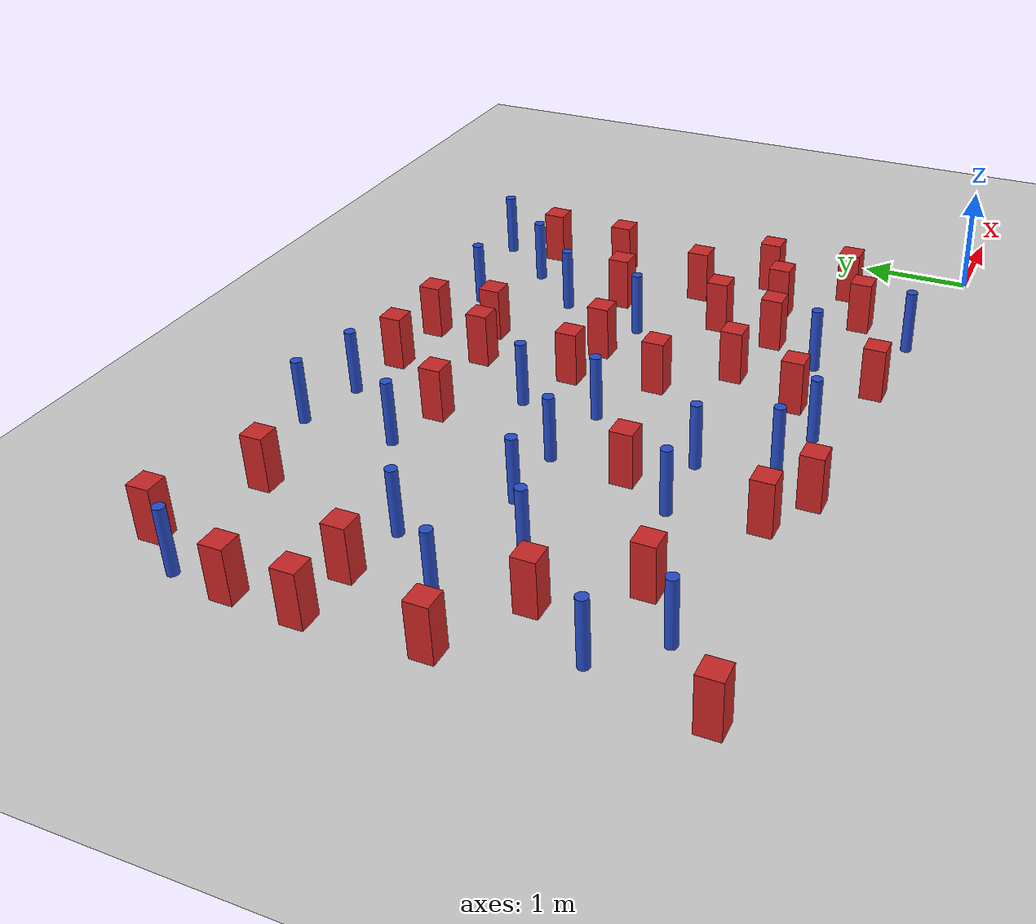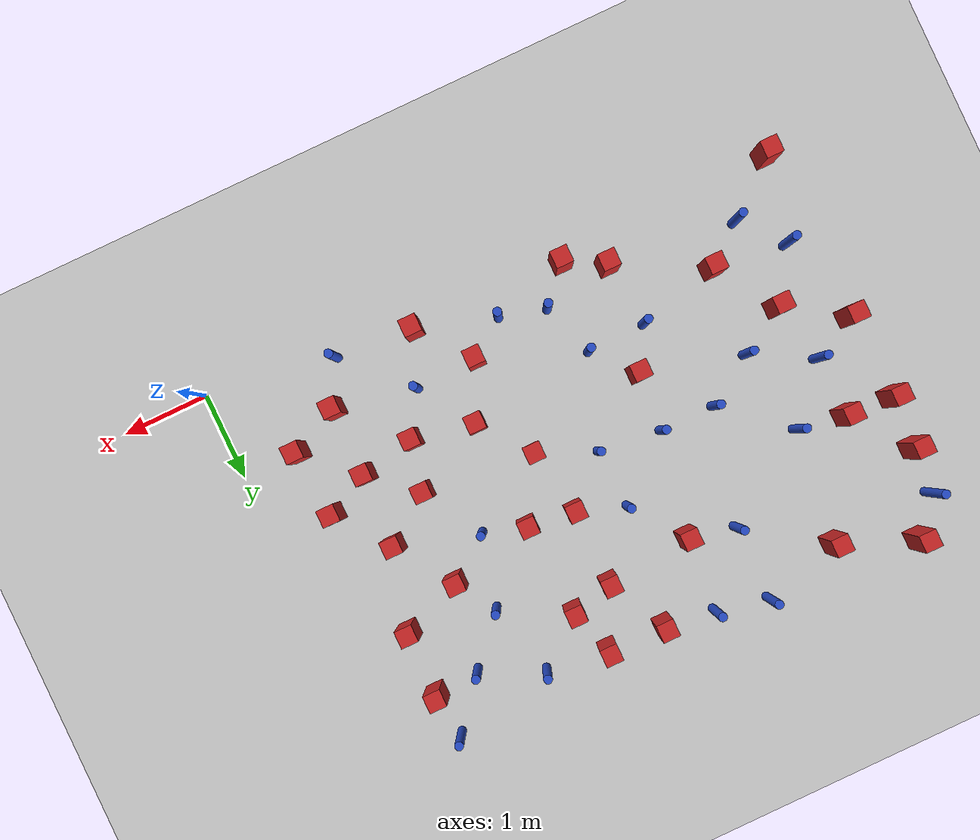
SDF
<sdf version="1.6">
 <world name="default">
  <model name="ground_plane">
   <static>1</static>
   <link name="link">
    <collision name="collision">
     <geometry><plane><normal>0 0 1</normal><size>100 100</size></plane></geometry>
     <surface><friction><ode><mu>100</mu><mu2>50</mu2></ode></friction></surface>
    </collision>
    <visual name="visual">
     <cast_shadows>0</cast_shadows>
     <geometry><plane><normal>0 0 1</normal><size>100 100</size></plane></geometry>
     <material>
      <ambient>1.0 1.0 1.0 1.0</ambient>
      <diffuse>0.8 0.8 0.8 1.0</diffuse>
      <specular>0.01 0.01 0.01 1.000000</specular>
     </material>
    </visual>
   </link>
  </model>
  <model name="pole_obstacle3">
   <static>true</static>
   <pose>-6.8211940419 4.38299890925 2.88873142074e-08 -9.90536690842e-09 4.60219948965e-07 -1.20965994976e-07</pose>
   <link name="link">
    <pose>0 0 0.3 0 -0 0</pose>
    <inertial>
     <mass>1</mass>
     <inertia><ixx>0.145833</ixx><ixy>0</ixy><ixz>0</ixz><iyy>0.145833</iyy><iyz>0</iyz><izz>0.125</izz></inertia>
    </inertial>
    <collision name="collision">
     <geometry><cylinder><radius>0.05</radius><length>.6</length></cylinder></geometry>
    </collision>
    <visual name="visual">
     <geometry><cylinder><radius>0.05</radius><length>.6</length></cylinder></geometry>
     <material>
      <script><name>Gazebo/Blue</name><uri>file://media/materials/scripts/gazebo.material</uri></script>
     </material>
    </visual>
   </link>
  </model>
  <model name="square_post_obstacle23">
   <static>true</static>
   <pose>-0.949453098267 4.08446247527 8.22691968438e-08 7.22125133819e-06 -7.54495500217e-07 2.29674213826e-05</pose>
   <link name="link">
    <pose>0 0 0.25 0 -0 0</pose>
    <inertial>
     <mass>100</mass>
     <inertia>
      <ixx>0.166667</ixx>
      <ixy>0</ixy>
      <ixz>0</ixz>
      <iyy>0.166667</iyy>
      <iyz>0</iyz>
      <izz>0.166667</izz>
     </inertia>
    </inertial>
    <collision name="collision"><geometry><box><size>.2 .2 .5</size></box></geometry></collision>
    <visual name="visual">
     <geometry><box><size>.2 .2 .5</size></box></geometry>
     <material>
      <script><name>Gazebo/Red</name><uri>file://media/materials/scripts/gazebo.material</uri></script>
     </material>
    </visual>
   </link>
  </model>
  <model name="square_post_obstacle28">
   <static>true</static>
   <pose>-4.65914052058 0.591915527668 8.22691968438e-08 7.2212513382e-06 -7.54495500217e-07 2.29674213826e-05</pose>
   <link name="link">
    <pose>0 0 0.25 0 -0 0</pose>
    <inertial>
     <mass>100</mass>
     <inertia>
      <ixx>0.166667</ixx>
      <ixy>0</ixy>
      <ixz>0</ixz>
      <iyy>0.166667</iyy>
      <iyz>0</iyz>
      <izz>0.166667</izz>
     </inertia>
    </inertial>
    <collision name="collision"><geometry><box><size>.2 .2 .5</size></box></geometry></collision>
    <visual name="visual">
     <geometry><box><size>.2 .2 .5</size></box></geometry>
     <material>
      <script><name>Gazebo/Red</name><uri>file://media/materials/scripts/gazebo.material</uri></script>
     </material>
    </visual>
   </link>
  </model>
  <model name="pole_obstacle20">
   <static>true</static>
   <pose>-2.18454358331 0.933623202442 2.88873142074e-08 -9.90536689285e-09 4.60219949002e-07 -1.20965994953e-07</pose>
   <link name="link">
    <pose>0 0 0.3 0 -0 0</pose>
    <inertial>
     <mass>1</mass>
     <inertia><ixx>0.145833</ixx><ixy>0</ixy><ixz>0</ixz><iyy>0.145833</iyy><iyz>0</iyz><izz>0.125</izz></inertia>
    </inertial>
    <collision name="collision">
     <geometry><cylinder><radius>0.05</radius><length>.6</length></cylinder></geometry>
    </collision>
    <visual name="visual">
     <geometry><cylinder><radius>0.05</radius><length>.6</length></cylinder></geometry>
     <material>
      <script><name>Gazebo/Blue</name><uri>file://media/materials/scripts/gazebo.material</uri></script>
     </material>
    </visual>
   </link>
  </model>
  <model name="pole_obstacle29">
   <static>true</static>
   <pose>-4.07144258752 1.3700278536 2.88873142074e-08 -9.90536689445e-09 4.60219948999e-07 -1.20965994956e-07</pose>
   <link name="link">
    <pose>0 0 0.3 0 -0 0</pose>
    <inertial>
     <mass>1</mass>
     <inertia><ixx>0.145833</ixx><ixy>0</ixy><ixz>0</ixz><iyy>0.145833</iyy><iyz>0</iyz><izz>0.125</izz></inertia>
    </inertial>
    <collision name="collision">
     <geometry><cylinder><radius>0.05</radius><length>.6</length></cylinder></geometry>
    </collision>
    <visual name="visual">
     <geometry><cylinder><radius>0.05</radius><length>.6</length></cylinder></geometry>
     <material>
      <script><name>Gazebo/Blue</name><uri>file://media/materials/scripts/gazebo.material</uri></script>
     </material>
    </visual>
   </link>
  </model>
  <model name="pole_obstacle37">
   <static>true</static>
   <pose>-5.62666486502 2.13464451941 2.88873142074e-08 -9.90536690245e-09 4.6021994898e-07 -1.20965994966e-07</pose>
   <link name="link">
    <pose>0 0 0.3 0 -0 0</pose>
    <inertial>
     <mass>1</mass>
     <inertia><ixx>0.145833</ixx><ixy>0</ixy><ixz>0</ixz><iyy>0.145833</iyy><iyz>0</iyz><izz>0.125</izz></inertia>
    </inertial>
    <collision name="collision">
     <geometry><cylinder><radius>0.05</radius><length>.6</length></cylinder></geometry>
    </collision>
    <visual name="visual">
     <geometry><cylinder><radius>0.05</radius><length>.6</length></cylinder></geometry>
     <material>
      <script><name>Gazebo/Blue</name><uri>file://media/materials/scripts/gazebo.material</uri></script>
     </material>
    </visual>
   </link>
  </model>
  <model name="pole_obstacle40">
   <static>true</static>
   <pose>-3.70035162913 2.4139418662 2.88873142074e-08 -9.90536690232e-09 4.6021994898e-07 -1.20965994968e-07</pose>
   <link name="link">
    <pose>0 0 0.3 0 -0 0</pose>
    <inertial>
     <mass>1</mass>
     <inertia><ixx>0.145833</ixx><ixy>0</ixy><ixz>0</ixz><iyy>0.145833</iyy><iyz>0</iyz><izz>0.125</izz></inertia>
    </inertial>
    <collision name="collision">
     <geometry><cylinder><radius>0.05</radius><length>.6</length></cylinder></geometry>
    </collision>
    <visual name="visual">
     <geometry><cylinder><radius>0.05</radius><length>.6</length></cylinder></geometry>
     <material>
      <script><name>Gazebo/Blue</name><uri>file://media/materials/scripts/gazebo.material</uri></script>
     </material>
    </visual>
   </link>
  </model>
  <model name="pole_obstacle45">
   <static>true</static>
   <pose>-4.71975379292 4.68969783988 2.88873142074e-08 -9.90536690842e-09 4.60219948965e-07 -1.20965994976e-07</pose>
   <link name="link">
    <pose>0 0 0.3 0 -0 0</pose>
    <inertial>
     <mass>1</mass>
     <inertia><ixx>0.145833</ixx><ixy>0</ixy><ixz>0</ixz><iyy>0.145833</iyy><iyz>0</iyz><izz>0.125</izz></inertia>
    </inertial>
    <collision name="collision">
     <geometry><cylinder><radius>0.05</radius><length>.6</length></cylinder></geometry>
    </collision>
    <visual name="visual">
     <geometry><cylinder><radius>0.05</radius><length>.6</length></cylinder></geometry>
     <material>
      <script><name>Gazebo/Blue</name><uri>file://media/materials/scripts/gazebo.material</uri></script>
     </material>
    </visual>
   </link>
  </model>
  <model name="pole_obstacle50">
   <static>true</static>
   <pose>-5.78250115981 3.12130680411 2.88873142074e-08 -9.90536690245e-09 4.6021994898e-07 -1.20965994966e-07</pose>
   <link name="link">
    <pose>0 0 0.3 0 -0 0</pose>
    <inertial>
     <mass>1</mass>
     <inertia><ixx>0.145833</ixx><ixy>0</ixy><ixz>0</ixz><iyy>0.145833</iyy><iyz>0</iyz><izz>0.125</izz></inertia>
    </inertial>
    <collision name="collision">
     <geometry><cylinder><radius>0.05</radius><length>.6</length></cylinder></geometry>
    </collision>
    <visual name="visual">
     <geometry><cylinder><radius>0.05</radius><length>.6</length></cylinder></geometry>
     <material>
      <script><name>Gazebo/Blue</name><uri>file://media/materials/scripts/gazebo.material</uri></script>
     </material>
    </visual>
   </link>
  </model>
  <model name="square_post_obstacle50">
   <static>true</static>
   <pose>-6.89447187173 3.24124673202 8.22691968438e-08 7.2212513382e-06 -7.54495500217e-07 2.29674213826e-05</pose>
   <link name="link">
    <pose>0 0 0.25 0 -0 0</pose>
    <inertial>
     <mass>100</mass>
     <inertia>
      <ixx>0.166667</ixx>
      <ixy>0</ixy>
      <ixz>0</ixz>
      <iyy>0.166667</iyy>
      <iyz>0</iyz>
      <izz>0.166667</izz>
     </inertia>
    </inertial>
    <collision name="collision"><geometry><box><size>.2 .2 .5</size></box></geometry></collision>
    <visual name="visual">
     <geometry><box><size>.2 .2 .5</size></box></geometry>
     <material>
      <script><name>Gazebo/Red</name><uri>file://media/materials/scripts/gazebo.material</uri></script>
     </material>
    </visual>
   </link>
  </model>
  <model name="square_post_obstacle56">
   <static>true</static>
   <pose>-3.19542642221 3.78148026158 8.22691968438e-08 7.2212513382e-06 -7.54495500217e-07 2.29674213826e-05</pose>
   <link name="link">
    <pose>0 0 0.25 0 -0 0</pose>
    <inertial>
     <mass>100</mass>
     <inertia>
      <ixx>0.166667</ixx>
      <ixy>0</ixy>
      <ixz>0</ixz>
      <iyy>0.166667</iyy>
      <iyz>0</iyz>
      <izz>0.166667</izz>
     </inertia>
    </inertial>
    <collision name="collision"><geometry><box><size>.2 .2 .5</size></box></geometry></collision>
    <visual name="visual">
     <geometry><box><size>.2 .2 .5</size></box></geometry>
     <material>
      <script><name>Gazebo/Red</name><uri>file://media/materials/scripts/gazebo.material</uri></script>
     </material>
    </visual>
   </link>
  </model>
  <model name="square_post_obstacle58">
   <static>true</static>
   <pose>-4.20915959865 0.346080706042 8.22691968438e-08 7.2212513382e-06 -7.54495500217e-07 2.29674213826e-05</pose>
   <link name="link">
    <pose>0 0 0.25 0 -0 0</pose>
    <inertial>
     <mass>100</mass>
     <inertia>
      <ixx>0.166667</ixx>
      <ixy>0</ixy>
      <ixz>0</ixz>
      <iyy>0.166667</iyy>
      <iyz>0</iyz>
      <izz>0.166667</izz>
     </inertia>
    </inertial>
    <collision name="collision"><geometry><box><size>.2 .2 .5</size></box></geometry></collision>
    <visual name="visual">
     <geometry><box><size>.2 .2 .5</size></box></geometry>
     <material>
      <script><name>Gazebo/Red</name><uri>file://media/materials/scripts/gazebo.material</uri></script>
     </material>
    </visual>
   </link>
  </model>
  <model name="square_post_obstacle59">
   <static>true</static>
   <pose>-6.84575615232 2.23748297274 8.22691968438e-08 7.2212513382e-06 -7.54495500217e-07 2.29674213826e-05</pose>
   <link name="link">
    <pose>0 0 0.25 0 -0 0</pose>
    <inertial>
     <mass>100</mass>
     <inertia>
      <ixx>0.166667</ixx>
      <ixy>0</ixy>
      <ixz>0</ixz>
      <iyy>0.166667</iyy>
      <iyz>0</iyz>
      <izz>0.166667</izz>
     </inertia>
    </inertial>
    <collision name="collision"><geometry><box><size>.2 .2 .5</size></box></geometry></collision>
    <visual name="visual">
     <geometry><box><size>.2 .2 .5</size></box></geometry>
     <material>
      <script><name>Gazebo/Red</name><uri>file://media/materials/scripts/gazebo.material</uri></script>
     </material>
    </visual>
   </link>
  </model>
  <model name="square_post_obstacle60">
   <static>true</static>
   <pose>-5.68875863762 1.11330924239 8.22691968438e-08 7.2212513382e-06 -7.54495500217e-07 2.29674213826e-05</pose>
   <link name="link">
    <pose>0 0 0.25 0 -0 0</pose>
    <inertial>
     <mass>100</mass>
     <inertia>
      <ixx>0.166667</ixx>
      <ixy>0</ixy>
      <ixz>0</ixz>
      <iyy>0.166667</iyy>
      <iyz>0</iyz>
      <izz>0.166667</izz>
     </inertia>
    </inertial>
    <collision name="collision"><geometry><box><size>.2 .2 .5</size></box></geometry></collision>
    <visual name="visual">
     <geometry><box><size>.2 .2 .5</size></box></geometry>
     <material>
      <script><name>Gazebo/Red</name><uri>file://media/materials/scripts/gazebo.material</uri></script>
     </material>
    </visual>
   </link>
  </model>
  <model name="pole_obstacle56">
   <static>true</static>
   <pose>-5.06410483555 2.50184313535 2.88873142074e-08 -9.90536690245e-09 4.6021994898e-07 -1.20965994966e-07</pose>
   <link name="link">
    <pose>0 0 0.3 0 -0 0</pose>
    <inertial>
     <mass>1</mass>
     <inertia><ixx>0.145833</ixx><ixy>0</ixy><ixz>0</ixz><iyy>0.145833</iyy><iyz>0</iyz><izz>0.125</izz></inertia>
    </inertial>
    <collision name="collision">
     <geometry><cylinder><radius>0.05</radius><length>.6</length></cylinder></geometry>
    </collision>
    <visual name="visual">
     <geometry><cylinder><radius>0.05</radius><length>.6</length></cylinder></geometry>
     <material>
      <script><name>Gazebo/Blue</name><uri>file://media/materials/scripts/gazebo.material</uri></script>
     </material>
    </visual>
   </link>
  </model>
  <model name="square_post_obstacle62">
   <static>true</static>
   <pose>-2.87652963624 4.44700301825 8.22691968438e-08 7.2212513382e-06 -7.54495500217e-07 2.29674213826e-05</pose>
   <link name="link">
    <pose>0 0 0.25 0 -0 0</pose>
    <inertial>
     <mass>100</mass>
     <inertia>
      <ixx>0.166667</ixx>
      <ixy>0</ixy>
      <ixz>0</ixz>
      <iyy>0.166667</iyy>
      <iyz>0</iyz>
      <izz>0.166667</izz>
     </inertia>
    </inertial>
    <collision name="collision"><geometry><box><size>.2 .2 .5</size></box></geometry></collision>
    <visual name="visual">
     <geometry><box><size>.2 .2 .5</size></box></geometry>
     <material>
      <script><name>Gazebo/Red</name><uri>file://media/materials/scripts/gazebo.material</uri></script>
     </material>
    </visual>
   </link>
  </model>
  <model name="square_post_obstacle68">
   <static>true</static>
   <pose>-2.71102638498 3.90849313811 8.22691968438e-08 7.2212513382e-06 -7.54495500217e-07 2.29674213826e-05</pose>
   <link name="link">
    <pose>0 0 0.25 0 -0 0</pose>
    <inertial>
     <mass>100</mass>
     <inertia>
      <ixx>0.166667</ixx>
      <ixy>0</ixy>
      <ixz>0</ixz>
      <iyy>0.166667</iyy>
      <iyz>0</iyz>
      <izz>0.166667</izz>
     </inertia>
    </inertial>
    <collision name="collision"><geometry><box><size>.2 .2 .5</size></box></geometry></collision>
    <visual name="visual">
     <geometry><box><size>.2 .2 .5</size></box></geometry>
     <material>
      <script><name>Gazebo/Red</name><uri>file://media/materials/scripts/gazebo.material</uri></script>
     </material>
    </visual>
   </link>
  </model>
  <model name="pole_obstacle70">
   <static>true</static>
   <pose>-1.51714267274 0.238921702689 2.88873142074e-08 -9.90536689779e-09 4.60219948991e-07 -1.20965994958e-07</pose>
   <link name="link">
    <pose>0 0 0.3 0 -0 0</pose>
    <inertial>
     <mass>1</mass>
     <inertia><ixx>0.145833</ixx><ixy>0</ixy><ixz>0</ixz><iyy>0.145833</iyy><iyz>0</iyz><izz>0.125</izz></inertia>
    </inertial>
    <collision name="collision">
     <geometry><cylinder><radius>0.05</radius><length>.6</length></cylinder></geometry>
    </collision>
    <visual name="visual">
     <geometry><cylinder><radius>0.05</radius><length>.6</length></cylinder></geometry>
     <material>
      <script><name>Gazebo/Blue</name><uri>file://media/materials/scripts/gazebo.material</uri></script>
     </material>
    </visual>
   </link>
  </model>
  <model name="square_post_obstacle76">
   <static>true</static>
   <pose>-3.04745703966 2.1262228323 8.22691968438e-08 7.2212513382e-06 -7.54495500217e-07 2.29674213826e-05</pose>
   <link name="link">
    <pose>0 0 0.25 0 -0 0</pose>
    <inertial>
     <mass>100</mass>
     <inertia>
      <ixx>0.166667</ixx>
      <ixy>0</ixy>
      <ixz>0</ixz>
      <iyy>0.166667</iyy>
      <iyz>0</iyz>
      <izz>0.166667</izz>
     </inertia>
    </inertial>
    <collision name="collision"><geometry><box><size>.2 .2 .5</size></box></geometry></collision>
    <visual name="visual">
     <geometry><box><size>.2 .2 .5</size></box></geometry>
     <material>
      <script><name>Gazebo/Red</name><uri>file://media/materials/scripts/gazebo.material</uri></script>
     </material>
    </visual>
   </link>
  </model>
  <model name="pole_obstacle72">
   <static>true</static>
   <pose>-2.15698493707 2.6854304337 2.88873142074e-08 -9.90536690232e-09 4.6021994898e-07 -1.20965994968e-07</pose>
   <link name="link">
    <pose>0 0 0.3 0 -0 0</pose>
    <inertial>
     <mass>1</mass>
     <inertia><ixx>0.145833</ixx><ixy>0</ixy><ixz>0</ixz><iyy>0.145833</iyy><iyz>0</iyz><izz>0.125</izz></inertia>
    </inertial>
    <collision name="collision">
     <geometry><cylinder><radius>0.05</radius><length>.6</length></cylinder></geometry>
    </collision>
    <visual name="visual">
     <geometry><cylinder><radius>0.05</radius><length>.6</length></cylinder></geometry>
     <material>
      <script><name>Gazebo/Blue</name><uri>file://media/materials/scripts/gazebo.material</uri></script>
     </material>
    </visual>
   </link>
  </model>
  <model name="square_post_obstacle79">
   <static>true</static>
   <pose>-3.18886342941 2.89616577075 8.22691968438e-08 7.2212513382e-06 -7.54495500217e-07 2.29674213826e-05</pose>
   <link name="link">
    <pose>0 0 0.25 0 -0 0</pose>
    <inertial>
     <mass>100</mass>
     <inertia>
      <ixx>0.166667</ixx>
      <ixy>0</ixy>
      <ixz>0</ixz>
      <iyy>0.166667</iyy>
      <iyz>0</iyz>
      <izz>0.166667</izz>
     </inertia>
    </inertial>
    <collision name="collision"><geometry><box><size>.2 .2 .5</size></box></geometry></collision>
    <visual name="visual">
     <geometry><box><size>.2 .2 .5</size></box></geometry>
     <material>
      <script><name>Gazebo/Red</name><uri>file://media/materials/scripts/gazebo.material</uri></script>
     </material>
    </visual>
   </link>
  </model>
  <model name="pole_obstacle88">
   <static>true</static>
   <pose>-1.94382752447 3.50805806597 2.88873142074e-08 -9.90536689791e-09 4.6021994899e-07 -1.20965994959e-07</pose>
   <link name="link">
    <pose>0 0 0.3 0 -0 0</pose>
    <inertial>
     <mass>1</mass>
     <inertia><ixx>0.145833</ixx><ixy>0</ixy><ixz>0</ixz><iyy>0.145833</iyy><iyz>0</iyz><izz>0.125</izz></inertia>
    </inertial>
    <collision name="collision">
     <geometry><cylinder><radius>0.05</radius><length>.6</length></cylinder></geometry>
    </collision>
    <visual name="visual">
     <geometry><cylinder><radius>0.05</radius><length>.6</length></cylinder></geometry>
     <material>
      <script><name>Gazebo/Blue</name><uri>file://media/materials/scripts/gazebo.material</uri></script>
     </material>
    </visual>
   </link>
  </model>
  <model name="pole_obstacle91">
   <static>true</static>
   <pose>-6.32066010579 2.51076133797 2.88873142074e-08 -9.90536690245e-09 4.6021994898e-07 -1.20965994966e-07</pose>
   <link name="link">
    <pose>0 0 0.3 0 -0 0</pose>
    <inertial>
     <mass>1</mass>
     <inertia><ixx>0.145833</ixx><ixy>0</ixy><ixz>0</ixz><iyy>0.145833</iyy><iyz>0</iyz><izz>0.125</izz></inertia>
    </inertial>
    <collision name="collision">
     <geometry><cylinder><radius>0.05</radius><length>.6</length></cylinder></geometry>
    </collision>
    <visual name="visual">
     <geometry><cylinder><radius>0.05</radius><length>.6</length></cylinder></geometry>
     <material>
      <script><name>Gazebo/Blue</name><uri>file://media/materials/scripts/gazebo.material</uri></script>
     </material>
    </visual>
   </link>
  </model>
  <model name="square_post_obstacle87">
   <static>true</static>
   <pose>-6.16207543269 1.80427773564 8.22691968438e-08 7.2212513382e-06 -7.54495500217e-07 2.29674213826e-05</pose>
   <link name="link">
    <pose>0 0 0.25 0 -0 0</pose>
    <inertial>
     <mass>100</mass>
     <inertia>
      <ixx>0.166667</ixx>
      <ixy>0</ixy>
      <ixz>0</ixz>
      <iyy>0.166667</iyy>
      <iyz>0</iyz>
      <izz>0.166667</izz>
     </inertia>
    </inertial>
    <collision name="collision"><geometry><box><size>.2 .2 .5</size></box></geometry></collision>
    <visual name="visual">
     <geometry><box><size>.2 .2 .5</size></box></geometry>
     <material>
      <script><name>Gazebo/Red</name><uri>file://media/materials/scripts/gazebo.material</uri></script>
     </material>
    </visual>
   </link>
  </model>
  <model name="pole_obstacle111">
   <static>true</static>
   <pose>-4.75296740072 1.3522312287 2.88873142074e-08 -9.90536689445e-09 4.60219948999e-07 -1.20965994956e-07</pose>
   <link name="link">
    <pose>0 0 0.3 0 -0 0</pose>
    <inertial>
     <mass>1</mass>
     <inertia><ixx>0.145833</ixx><ixy>0</ixy><ixz>0</ixz><iyy>0.145833</iyy><iyz>0</iyz><izz>0.125</izz></inertia>
    </inertial>
    <collision name="collision">
     <geometry><cylinder><radius>0.05</radius><length>.6</length></cylinder></geometry>
    </collision>
    <visual name="visual">
     <geometry><cylinder><radius>0.05</radius><length>.6</length></cylinder></geometry>
     <material>
      <script><name>Gazebo/Blue</name><uri>file://media/materials/scripts/gazebo.material</uri></script>
     </material>
    </visual>
   </link>
  </model>
  <model name="pole_obstacle112">
   <static>true</static>
   <pose>-6.14320582007 0.757063078486 2.88873142074e-08 -9.90536689837e-09 4.60219948989e-07 -1.2096599496e-07</pose>
   <link name="link">
    <pose>0 0 0.3 0 -0 0</pose>
    <inertial>
     <mass>1</mass>
     <inertia><ixx>0.145833</ixx><ixy>0</ixy><ixz>0</ixz><iyy>0.145833</iyy><iyz>0</iyz><izz>0.125</izz></inertia>
    </inertial>
    <collision name="collision">
     <geometry><cylinder><radius>0.05</radius><length>.6</length></cylinder></geometry>
    </collision>
    <visual name="visual">
     <geometry><cylinder><radius>0.05</radius><length>.6</length></cylinder></geometry>
     <material>
      <script><name>Gazebo/Blue</name><uri>file://media/materials/scripts/gazebo.material</uri></script>
     </material>
    </visual>
   </link>
  </model>
  <model name="square_post_obstacle106">
   <static>true</static>
   <pose>-0.757929827655 1.79898514655 8.22691968438e-08 7.2212513382e-06 -7.54495500217e-07 2.29674213826e-05</pose>
   <link name="link">
    <pose>0 0 0.25 0 -0 0</pose>
    <inertial>
     <mass>100</mass>
     <inertia>
      <ixx>0.166667</ixx>
      <ixy>0</ixy>
      <ixz>0</ixz>
      <iyy>0.166667</iyy>
      <iyz>0</iyz>
      <izz>0.166667</izz>
     </inertia>
    </inertial>
    <collision name="collision"><geometry><box><size>.2 .2 .5</size></box></geometry></collision>
    <visual name="visual">
     <geometry><box><size>.2 .2 .5</size></box></geometry>
     <material>
      <script><name>Gazebo/Red</name><uri>file://media/materials/scripts/gazebo.material</uri></script>
     </material>
    </visual>
   </link>
  </model>
  <model name="square_post_obstacle107">
   <static>true</static>
   <pose>-0.692003234277 1.01633383424 8.22691968438e-08 7.2212513382e-06 -7.54495500217e-07 2.29674213826e-05</pose>
   <link name="link">
    <pose>0 0 0.25 0 -0 0</pose>
    <inertial>
     <mass>100</mass>
     <inertia>
      <ixx>0.166667</ixx>
      <ixy>0</ixy>
      <ixz>0</ixz>
      <iyy>0.166667</iyy>
      <iyz>0</iyz>
      <izz>0.166667</izz>
     </inertia>
    </inertial>
    <collision name="collision"><geometry><box><size>.2 .2 .5</size></box></geometry></collision>
    <visual name="visual">
     <geometry><box><size>.2 .2 .5</size></box></geometry>
     <material>
      <script><name>Gazebo/Red</name><uri>file://media/materials/scripts/gazebo.material</uri></script>
     </material>
    </visual>
   </link>
  </model>
  <model name="pole_obstacle133">
   <static>true</static>
   <pose>-4.72252691509 3.82119566942 2.88873142074e-08 -9.90536690245e-09 4.6021994898e-07 -1.20965994966e-07</pose>
   <link name="link">
    <pose>0 0 0.3 0 -0 0</pose>
    <inertial>
     <mass>1</mass>
     <inertia><ixx>0.145833</ixx><ixy>0</ixy><ixz>0</ixz><iyy>0.145833</iyy><iyz>0</iyz><izz>0.125</izz></inertia>
    </inertial>
    <collision name="collision">
     <geometry><cylinder><radius>0.05</radius><length>.6</length></cylinder></geometry>
    </collision>
    <visual name="visual">
     <geometry><cylinder><radius>0.05</radius><length>.6</length></cylinder></geometry>
     <material>
      <script><name>Gazebo/Blue</name><uri>file://media/materials/scripts/gazebo.material</uri></script>
     </material>
    </visual>
   </link>
  </model>
  <model name="square_post_obstacle119">
   <static>true</static>
   <pose>-1.25858166611 0.749679006099 8.22691968438e-08 7.2212513382e-06 -7.54495500217e-07 2.29674213826e-05</pose>
   <link name="link">
    <pose>0 0 0.25 0 -0 0</pose>
    <inertial>
     <mass>100</mass>
     <inertia>
      <ixx>0.166667</ixx>
      <ixy>0</ixy>
      <ixz>0</ixz>
      <iyy>0.166667</iyy>
      <iyz>0</iyz>
      <izz>0.166667</izz>
     </inertia>
    </inertial>
    <collision name="collision"><geometry><box><size>.2 .2 .5</size></box></geometry></collision>
    <visual name="visual">
     <geometry><box><size>.2 .2 .5</size></box></geometry>
     <material>
      <script><name>Gazebo/Red</name><uri>file://media/materials/scripts/gazebo.material</uri></script>
     </material>
    </visual>
   </link>
  </model>
  <model name="square_post_obstacle123">
   <static>true</static>
   <pose>-1.22395379546 2.39292756996 8.22691968438e-08 7.2212513382e-06 -7.54495500217e-07 2.29674213826e-05</pose>
   <link name="link">
    <pose>0 0 0.25 0 -0 0</pose>
    <inertial>
     <mass>100</mass>
     <inertia>
      <ixx>0.166667</ixx>
      <ixy>0</ixy>
      <ixz>0</ixz>
      <iyy>0.166667</iyy>
      <iyz>0</iyz>
      <izz>0.166667</izz>
     </inertia>
    </inertial>
    <collision name="collision"><geometry><box><size>.2 .2 .5</size></box></geometry></collision>
    <visual name="visual">
     <geometry><box><size>.2 .2 .5</size></box></geometry>
     <material>
      <script><name>Gazebo/Red</name><uri>file://media/materials/scripts/gazebo.material</uri></script>
     </material>
    </visual>
   </link>
  </model>
  <model name="square_post_obstacle127">
   <static>true</static>
   <pose>-1.26121774939 1.54787716171 8.22691968438e-08 7.2212513382e-06 -7.54495500217e-07 2.29674213826e-05</pose>
   <link name="link">
    <pose>0 0 0.25 0 -0 0</pose>
    <inertial>
     <mass>100</mass>
     <inertia>
      <ixx>0.166667</ixx>
      <ixy>0</ixy>
      <ixz>0</ixz>
      <iyy>0.166667</iyy>
      <iyz>0</iyz>
      <izz>0.166667</izz>
     </inertia>
    </inertial>
    <collision name="collision"><geometry><box><size>.2 .2 .5</size></box></geometry></collision>
    <visual name="visual">
     <geometry><box><size>.2 .2 .5</size></box></geometry>
     <material>
      <script><name>Gazebo/Red</name><uri>file://media/materials/scripts/gazebo.material</uri></script>
     </material>
    </visual>
   </link>
  </model>
  <model name="square_post_obstacle130">
   <static>true</static>
   <pose>-4.18606496069 3.68732992879 8.22691968438e-08 7.2212513382e-06 -7.54495500217e-07 2.29674213826e-05</pose>
   <link name="link">
    <pose>0 0 0.25 0 -0 0</pose>
    <inertial>
     <mass>100</mass>
     <inertia>
      <ixx>0.166667</ixx>
      <ixy>0</ixy>
      <ixz>0</ixz>
      <iyy>0.166667</iyy>
      <iyz>0</iyz>
      <izz>0.166667</izz>
     </inertia>
    </inertial>
    <collision name="collision"><geometry><box><size>.2 .2 .5</size></box></geometry></collision>
    <visual name="visual">
     <geometry><box><size>.2 .2 .5</size></box></geometry>
     <material>
      <script><name>Gazebo/Red</name><uri>file://media/materials/scripts/gazebo.material</uri></script>
     </material>
    </visual>
   </link>
  </model>
  <model name="square_post_obstacle132">
   <static>true</static>
   <pose>-3.53905010303 4.46632102088 8.22691968438e-08 7.2212513382e-06 -7.54495500217e-07 2.29674213826e-05</pose>
   <link name="link">
    <pose>0 0 0.25 0 -0 0</pose>
    <inertial>
     <mass>100</mass>
     <inertia>
      <ixx>0.166667</ixx>
      <ixy>0</ixy>
      <ixz>0</ixz>
      <iyy>0.166667</iyy>
      <iyz>0</iyz>
      <izz>0.166667</izz>
     </inertia>
    </inertial>
    <collision name="collision"><geometry><box><size>.2 .2 .5</size></box></geometry></collision>
    <visual name="visual">
     <geometry><box><size>.2 .2 .5</size></box></geometry>
     <material>
      <script><name>Gazebo/Red</name><uri>file://media/materials/scripts/gazebo.material</uri></script>
     </material>
    </visual>
   </link>
  </model>
  <model name="square_post_obstacle134">
   <static>true</static>
   <pose>-1.6648660705 3.05127861843 8.22691968438e-08 7.2212513382e-06 -7.54495500217e-07 2.29674213826e-05</pose>
   <link name="link">
    <pose>0 0 0.25 0 -0 0</pose>
    <inertial>
     <mass>100</mass>
     <inertia>
      <ixx>0.166667</ixx>
      <ixy>0</ixy>
      <ixz>0</ixz>
      <iyy>0.166667</iyy>
      <iyz>0</iyz>
      <izz>0.166667</izz>
     </inertia>
    </inertial>
    <collision name="collision"><geometry><box><size>.2 .2 .5</size></box></geometry></collision>
    <visual name="visual">
     <geometry><box><size>.2 .2 .5</size></box></geometry>
     <material>
      <script><name>Gazebo/Red</name><uri>file://media/materials/scripts/gazebo.material</uri></script>
     </material>
    </visual>
   </link>
  </model>
  <model name="square_post_obstacle136">
   <static>true</static>
   <pose>-1.89270527702 1.42132465907 8.22691968438e-08 7.2212513382e-06 -7.54495500217e-07 2.29674213826e-05</pose>
   <link name="link">
    <pose>0 0 0.25 0 -0 0</pose>
    <inertial>
     <mass>100</mass>
     <inertia>
      <ixx>0.166667</ixx>
      <ixy>0</ixy>
      <ixz>0</ixz>
      <iyy>0.166667</iyy>
      <iyz>0</iyz>
      <izz>0.166667</izz>
     </inertia>
    </inertial>
    <collision name="collision"><geometry><box><size>.2 .2 .5</size></box></geometry></collision>
    <visual name="visual">
     <geometry><box><size>.2 .2 .5</size></box></geometry>
     <material>
      <script><name>Gazebo/Red</name><uri>file://media/materials/scripts/gazebo.material</uri></script>
     </material>
    </visual>
   </link>
  </model>
  <model name="pole_obstacle149">
   <static>true</static>
   <pose>-3.86005968279 0.746950544303 2.88873142074e-08 -9.90536689285e-09 4.60219949002e-07 -1.20965994953e-07</pose>
   <link name="link">
    <pose>0 0 0.3 0 -0 0</pose>
    <inertial>
     <mass>1</mass>
     <inertia><ixx>0.145833</ixx><ixy>0</ixy><ixz>0</ixz><iyy>0.145833</iyy><iyz>0</iyz><izz>0.125</izz></inertia>
    </inertial>
    <collision name="collision">
     <geometry><cylinder><radius>0.05</radius><length>.6</length></cylinder></geometry>
    </collision>
    <visual name="visual">
     <geometry><cylinder><radius>0.05</radius><length>.6</length></cylinder></geometry>
     <material>
      <script><name>Gazebo/Blue</name><uri>file://media/materials/scripts/gazebo.material</uri></script>
     </material>
    </visual>
   </link>
  </model>
  <model name="square_post_obstacle145">
   <static>true</static>
   <pose>-2.64803955757 2.82929686323 8.22691968438e-08 7.2212513382e-06 -7.54495500217e-07 2.29674213826e-05</pose>
   <link name="link">
    <pose>0 0 0.25 0 -0 0</pose>
    <inertial>
     <mass>100</mass>
     <inertia>
      <ixx>0.166667</ixx>
      <ixy>0</ixy>
      <ixz>0</ixz>
      <iyy>0.166667</iyy>
      <iyz>0</iyz>
      <izz>0.166667</izz>
     </inertia>
    </inertial>
    <collision name="collision"><geometry><box><size>.2 .2 .5</size></box></geometry></collision>
    <visual name="visual">
     <geometry><box><size>.2 .2 .5</size></box></geometry>
     <material>
      <script><name>Gazebo/Red</name><uri>file://media/materials/scripts/gazebo.material</uri></script>
     </material>
    </visual>
   </link>
  </model>
  <model name="square_post_obstacle147">
   <static>true</static>
   <pose>-5.62243024926 4.43418741601 8.22691968438e-08 7.2212513382e-06 -7.54495500217e-07 2.29674213826e-05</pose>
   <link name="link">
    <pose>0 0 0.25 0 -0 0</pose>
    <inertial>
     <mass>100</mass>
     <inertia>
      <ixx>0.166667</ixx>
      <ixy>0</ixy>
      <ixz>0</ixz>
      <iyy>0.166667</iyy>
      <iyz>0</iyz>
      <izz>0.166667</izz>
     </inertia>
    </inertial>
    <collision name="collision"><geometry><box><size>.2 .2 .5</size></box></geometry></collision>
    <visual name="visual">
     <geometry><box><size>.2 .2 .5</size></box></geometry>
     <material>
      <script><name>Gazebo/Red</name><uri>file://media/materials/scripts/gazebo.material</uri></script>
     </material>
    </visual>
   </link>
  </model>
  <model name="square_post_obstacle152">
   <static>true</static>
   <pose>-6.34224874083 3.20866778912 8.22691968438e-08 7.2212513382e-06 -7.54495500217e-07 2.29674213826e-05</pose>
   <link name="link">
    <pose>0 0 0.25 0 -0 0</pose>
    <inertial>
     <mass>100</mass>
     <inertia>
      <ixx>0.166667</ixx>
      <ixy>0</ixy>
      <ixz>0</ixz>
      <iyy>0.166667</iyy>
      <iyz>0</iyz>
      <izz>0.166667</izz>
     </inertia>
    </inertial>
    <collision name="collision"><geometry><box><size>.2 .2 .5</size></box></geometry></collision>
    <visual name="visual">
     <geometry><box><size>.2 .2 .5</size></box></geometry>
     <material>
      <script><name>Gazebo/Red</name><uri>file://media/materials/scripts/gazebo.material</uri></script>
     </material>
    </visual>
   </link>
  </model>
  <model name="square_post_obstacle154">
   <static>true</static>
   <pose>-2.89839132032 0.908390061522 8.22691968438e-08 7.2212513382e-06 -7.54495500217e-07 2.29674213826e-05</pose>
   <link name="link">
    <pose>0 0 0.25 0 -0 0</pose>
    <inertial>
     <mass>100</mass>
     <inertia>
      <ixx>0.166667</ixx>
      <ixy>0</ixy>
      <ixz>0</ixz>
      <iyy>0.166667</iyy>
      <iyz>0</iyz>
      <izz>0.166667</izz>
     </inertia>
    </inertial>
    <collision name="collision"><geometry><box><size>.2 .2 .5</size></box></geometry></collision>
    <visual name="visual">
     <geometry><box><size>.2 .2 .5</size></box></geometry>
     <material>
      <script><name>Gazebo/Red</name><uri>file://media/materials/scripts/gazebo.material</uri></script>
     </material>
    </visual>
   </link>
  </model>
  <model name="pole_obstacle166">
   <static>true</static>
   <pose>-6.55560218204 1.22060072074 2.88873142074e-08 -9.90536689445e-09 4.60219948999e-07 -1.20965994956e-07</pose>
   <link name="link">
    <pose>0 0 0.3 0 -0 0</pose>
    <inertial>
     <mass>1</mass>
     <inertia><ixx>0.145833</ixx><ixy>0</ixy><ixz>0</ixz><iyy>0.145833</iyy><iyz>0</iyz><izz>0.125</izz></inertia>
    </inertial>
    <collision name="collision">
     <geometry><cylinder><radius>0.05</radius><length>.6</length></cylinder></geometry>
    </collision>
    <visual name="visual">
     <geometry><cylinder><radius>0.05</radius><length>.6</length></cylinder></geometry>
     <material>
      <script><name>Gazebo/Blue</name><uri>file://media/materials/scripts/gazebo.material</uri></script>
     </material>
    </visual>
   </link>
  </model>
  <model name="pole_obstacle174">
   <static>true</static>
   <pose>-4.42576191488 2.49966564289 2.88873142074e-08 -9.90536690245e-09 4.6021994898e-07 -1.20965994966e-07</pose>
   <link name="link">
    <pose>0 0 0.3 0 -0 0</pose>
    <inertial>
     <mass>1</mass>
     <inertia><ixx>0.145833</ixx><ixy>0</ixy><ixz>0</ixz><iyy>0.145833</iyy><iyz>0</iyz><izz>0.125</izz></inertia>
    </inertial>
    <collision name="collision">
     <geometry><cylinder><radius>0.05</radius><length>.6</length></cylinder></geometry>
    </collision>
    <visual name="visual">
     <geometry><cylinder><radius>0.05</radius><length>.6</length></cylinder></geometry>
     <material>
      <script><name>Gazebo/Blue</name><uri>file://media/materials/scripts/gazebo.material</uri></script>
     </material>
    </visual>
   </link>
  </model>
  <model name="square_post_obstacle166">
   <static>true</static>
   <pose>-6.86698138505 3.85355906851 8.22691968438e-08 7.2212513382e-06 -7.54495500217e-07 2.29674213826e-05</pose>
   <link name="link">
    <pose>0 0 0.25 0 -0 0</pose>
    <inertial>
     <mass>100</mass>
     <inertia>
      <ixx>0.166667</ixx>
      <ixy>0</ixy>
      <ixz>0</ixz>
      <iyy>0.166667</iyy>
      <iyz>0</iyz>
      <izz>0.166667</izz>
     </inertia>
    </inertial>
    <collision name="collision"><geometry><box><size>.2 .2 .5</size></box></geometry></collision>
    <visual name="visual">
     <geometry><box><size>.2 .2 .5</size></box></geometry>
     <material>
      <script><name>Gazebo/Red</name><uri>file://media/materials/scripts/gazebo.material</uri></script>
     </material>
    </visual>
   </link>
  </model>
  <model name="square_post_obstacle171">
   <static>true</static>
   <pose>-6.49732446128 4.79113861636 8.22691968438e-08 7.2212513382e-06 -7.54495500217e-07 2.29674213826e-05</pose>
   <link name="link">
    <pose>0 0 0.25 0 -0 0</pose>
    <inertial>
     <mass>100</mass>
     <inertia>
      <ixx>0.166667</ixx>
      <ixy>0</ixy>
      <ixz>0</ixz>
      <iyy>0.166667</iyy>
      <iyz>0</iyz>
      <izz>0.166667</izz>
     </inertia>
    </inertial>
    <collision name="collision"><geometry><box><size>.2 .2 .5</size></box></geometry></collision>
    <visual name="visual">
     <geometry><box><size>.2 .2 .5</size></box></geometry>
     <material>
      <script><name>Gazebo/Red</name><uri>file://media/materials/scripts/gazebo.material</uri></script>
     </material>
    </visual>
   </link>
  </model>
  <model name="pole_obstacle186">
   <static>true</static>
   <pose>-4.12105035117 4.55553681776 2.88873142074e-08 -9.90536690842e-09 4.60219948965e-07 -1.20965994976e-07</pose>
   <link name="link">
    <pose>0 0 0.3 0 -0 0</pose>
    <inertial>
     <mass>1</mass>
     <inertia><ixx>0.145833</ixx><ixy>0</ixy><ixz>0</ixz><iyy>0.145833</iyy><iyz>0</iyz><izz>0.125</izz></inertia>
    </inertial>
    <collision name="collision">
     <geometry><cylinder><radius>0.05</radius><length>.6</length></cylinder></geometry>
    </collision>
    <visual name="visual">
     <geometry><cylinder><radius>0.05</radius><length>.6</length></cylinder></geometry>
     <material>
      <script><name>Gazebo/Blue</name><uri>file://media/materials/scripts/gazebo.material</uri></script>
     </material>
    </visual>
   </link>
  </model>
  <model name="pole_obstacle187">
   <static>true</static>
   <pose>-3.73410812996 3.10078041124 2.88873142074e-08 -9.90536690232e-09 4.6021994898e-07 -1.20965994968e-07</pose>
   <link name="link">
    <pose>0 0 0.3 0 -0 0</pose>
    <inertial>
     <mass>1</mass>
     <inertia><ixx>0.145833</ixx><ixy>0</ixy><ixz>0</ixz><iyy>0.145833</iyy><iyz>0</iyz><izz>0.125</izz></inertia>
    </inertial>
    <collision name="collision">
     <geometry><cylinder><radius>0.05</radius><length>.6</length></cylinder></geometry>
    </collision>
    <visual name="visual">
     <geometry><cylinder><radius>0.05</radius><length>.6</length></cylinder></geometry>
     <material>
      <script><name>Gazebo/Blue</name><uri>file://media/materials/scripts/gazebo.material</uri></script>
     </material>
    </visual>
   </link>
  </model>
  <model name="square_post_obstacle177">
   <static>true</static>
   <pose>-2.42019372972 0.321337070333 8.22691968438e-08 7.2212513382e-06 -7.54495500217e-07 2.29674213826e-05</pose>
   <link name="link">
    <pose>0 0 0.25 0 -0 0</pose>
    <inertial>
     <mass>100</mass>
     <inertia>
      <ixx>0.166667</ixx>
      <ixy>0</ixy>
      <ixz>0</ixz>
      <iyy>0.166667</iyy>
      <iyz>0</iyz>
      <izz>0.166667</izz>
     </inertia>
    </inertial>
    <collision name="collision"><geometry><box><size>.2 .2 .5</size></box></geometry></collision>
    <visual name="visual">
     <geometry><box><size>.2 .2 .5</size></box></geometry>
     <material>
      <script><name>Gazebo/Red</name><uri>file://media/materials/scripts/gazebo.material</uri></script>
     </material>
    </visual>
   </link>
  </model>
  <model name="square_post_obstacle200">
   <static>true</static>
   <pose>-0.966778679598 3.32768326302 8.22691968438e-08 7.2212513382e-06 -7.54495500217e-07 2.29674213826e-05</pose>
   <link name="link">
    <pose>0 0 0.25 0 -0 0</pose>
    <inertial>
     <mass>100</mass>
     <inertia>
      <ixx>0.166667</ixx>
      <ixy>0</ixy>
      <ixz>0</ixz>
      <iyy>0.166667</iyy>
      <iyz>0</iyz>
      <izz>0.166667</izz>
     </inertia>
    </inertial>
    <collision name="collision"><geometry><box><size>.2 .2 .5</size></box></geometry></collision>
    <visual name="visual">
     <geometry><box><size>.2 .2 .5</size></box></geometry>
     <material>
      <script><name>Gazebo/Red</name><uri>file://media/materials/scripts/gazebo.material</uri></script>
     </material>
    </visual>
   </link>
  </model>
  <model name="square_post_obstacle202">
   <static>true</static>
   <pose>-6.7531185259 0.235603722623 8.22691968438e-08 7.2212513382e-06 -7.54495500217e-07 2.29674213826e-05</pose>
   <link name="link">
    <pose>0 0 0.25 0 -0 0</pose>
    <inertial>
     <mass>100</mass>
     <inertia>
      <ixx>0.166667</ixx>
      <ixy>0</ixy>
      <ixz>0</ixz>
      <iyy>0.166667</iyy>
      <iyz>0</iyz>
      <izz>0.166667</izz>
     </inertia>
    </inertial>
    <collision name="collision"><geometry><box><size>.2 .2 .5</size></box></geometry></collision>
    <visual name="visual">
     <geometry><box><size>.2 .2 .5</size></box></geometry>
     <material>
      <script><name>Gazebo/Red</name><uri>file://media/materials/scripts/gazebo.material</uri></script>
     </material>
    </visual>
   </link>
  </model>
  <model name="pole_obstacle191">
   <static>true</static>
   <pose>-1.00192700544 4.60272096807 2.88873142074e-08 -9.90536689792e-09 4.6021994899e-07 -1.2096599496e-07</pose>
   <link name="link">
    <pose>0 0 0.3 0 -0 0</pose>
    <inertial>
     <mass>1</mass>
     <inertia><ixx>0.145833</ixx><ixy>0</ixy><ixz>0</ixz><iyy>0.145833</iyy><iyz>0</iyz><izz>0.125</izz></inertia>
    </inertial>
    <collision name="collision">
     <geometry><cylinder><radius>0.05</radius><length>.6</length></cylinder></geometry>
    </collision>
    <visual name="visual">
     <geometry><cylinder><radius>0.05</radius><length>.6</length></cylinder></geometry>
     <material>
      <script><name>Gazebo/Blue</name><uri>file://media/materials/scripts/gazebo.material</uri></script>
     </material>
    </visual>
   </link>
  </model>
  <model name="square_post_obstacle208">
   <static>true</static>
   <pose>-4.46434148633 1.81481280017 8.22691968438e-08 7.2212513382e-06 -7.54495500217e-07 2.29674213826e-05</pose>
   <link name="link">
    <pose>0 0 0.25 0 -0 0</pose>
    <inertial>
     <mass>100</mass>
     <inertia>
      <ixx>0.166667</ixx>
      <ixy>0</ixy>
      <ixz>0</ixz>
      <iyy>0.166667</iyy>
      <iyz>0</iyz>
      <izz>0.166667</izz>
     </inertia>
    </inertial>
    <collision name="collision"><geometry><box><size>.2 .2 .5</size></box></geometry></collision>
    <visual name="visual">
     <geometry><box><size>.2 .2 .5</size></box></geometry>
     <material>
      <script><name>Gazebo/Red</name><uri>file://media/materials/scripts/gazebo.material</uri></script>
     </material>
    </visual>
   </link>
  </model>
  <model name="pole_obstacle198">
   <static>true</static>
   <pose>-1.46431001482 4.04037613192 2.88873142074e-08 -9.90536689894e-09 4.60219948988e-07 -1.20965994962e-07</pose>
   <link name="link">
    <pose>0 0 0.3 0 -0 0</pose>
    <inertial>
     <mass>1</mass>
     <inertia><ixx>0.145833</ixx><ixy>0</ixy><ixz>0</ixz><iyy>0.145833</iyy><iyz>0</iyz><izz>0.125</izz></inertia>
    </inertial>
    <collision name="collision">
     <geometry><cylinder><radius>0.05</radius><length>.6</length></cylinder></geometry>
    </collision>
    <visual name="visual">
     <geometry><cylinder><radius>0.05</radius><length>.6</length></cylinder></geometry>
     <material>
      <script><name>Gazebo/Blue</name><uri>file://media/materials/scripts/gazebo.material</uri></script>
     </material>
    </visual>
   </link>
  </model>
  <model name="pole_obstacle201">
   <static>true</static>
   <pose>-2.15818031177 4.36384520614 2.88873142074e-08 -9.90536689859e-09 4.60219948989e-07 -1.20965994961e-07</pose>
   <link name="link">
    <pose>0 0 0.3 0 -0 0</pose>
    <inertial>
     <mass>1</mass>
     <inertia><ixx>0.145833</ixx><ixy>0</ixy><ixz>0</ixz><iyy>0.145833</iyy><iyz>0</iyz><izz>0.125</izz></inertia>
    </inertial>
    <collision name="collision">
     <geometry><cylinder><radius>0.05</radius><length>.6</length></cylinder></geometry>
    </collision>
    <visual name="visual">
     <geometry><cylinder><radius>0.05</radius><length>.6</length></cylinder></geometry>
     <material>
      <script><name>Gazebo/Blue</name><uri>file://media/materials/scripts/gazebo.material</uri></script>
     </material>
    </visual>
   </link>
  </model>
  <model name="square_post_obstacle211">
   <static>true</static>
   <pose>-1.76425996738 1.99621996466 8.22691968438e-08 7.2212513382e-06 -7.54495500217e-07 2.29674213826e-05</pose>
   <link name="link">
    <pose>0 0 0.25 0 -0 0</pose>
    <inertial>
     <mass>100</mass>
     <inertia>
      <ixx>0.166667</ixx>
      <ixy>0</ixy>
      <ixz>0</ixz>
      <iyy>0.166667</iyy>
      <iyz>0</iyz>
      <izz>0.166667</izz>
     </inertia>
    </inertial>
    <collision name="collision"><geometry><box><size>.2 .2 .5</size></box></geometry></collision>
    <visual name="visual">
     <geometry><box><size>.2 .2 .5</size></box></geometry>
     <material>
      <script><name>Gazebo/Red</name><uri>file://media/materials/scripts/gazebo.material</uri></script>
     </material>
    </visual>
   </link>
  </model>
  <model name="pole_obstacle221">
   <static>true</static>
   <pose>-3.32985999087 0.600744020412 2.88873142074e-08 -9.90536689285e-09 4.60219949002e-07 -1.20965994953e-07</pose>
   <link name="link">
    <pose>0 0 0.3 0 -0 0</pose>
    <inertial>
     <mass>1</mass>
     <inertia><ixx>0.145833</ixx><ixy>0</ixy><ixz>0</ixz><iyy>0.145833</iyy><iyz>0</iyz><izz>0.125</izz></inertia>
    </inertial>
    <collision name="collision">
     <geometry><cylinder><radius>0.05</radius><length>.6</length></cylinder></geometry>
    </collision>
    <visual name="visual">
     <geometry><cylinder><radius>0.05</radius><length>.6</length></cylinder></geometry>
     <material>
      <script><name>Gazebo/Blue</name><uri>file://media/materials/scripts/gazebo.material</uri></script>
     </material>
    </visual>
   </link>
  </model>
  <model name="square_post_obstacle223">
   <static>true</static>
   <pose>-2.60677996738 1.55957996466 8.22691968438e-08 7.22125133819e-06 -7.54495500217e-07 2.29674213826e-05</pose>
   <link name="link">
    <pose>0 0 0.25 0 -0 0</pose>
    <inertial>
     <mass>100</mass>
     <inertia>
      <ixx>0.166667</ixx>
      <ixy>0</ixy>
      <ixz>0</ixz>
      <iyy>0.166667</iyy>
      <iyz>0</iyz>
      <izz>0.166667</izz>
     </inertia>
    </inertial>
    <collision name="collision"><geometry><box><size>.2 .2 .5</size></box></geometry></collision>
    <visual name="visual">
     <geometry><box><size>.2 .2 .5</size></box></geometry>
     <material>
      <script><name>Gazebo/Red</name><uri>file://media/materials/scripts/gazebo.material</uri></script>
     </material>
    </visual>
   </link>
  </model>
 </world>
</sdf>
